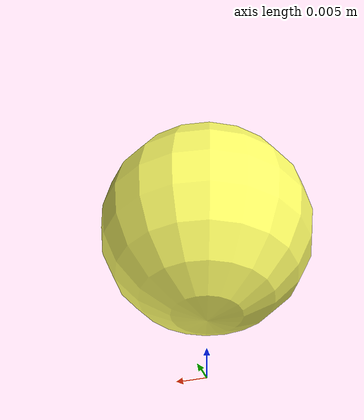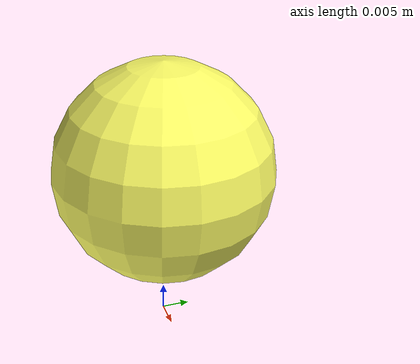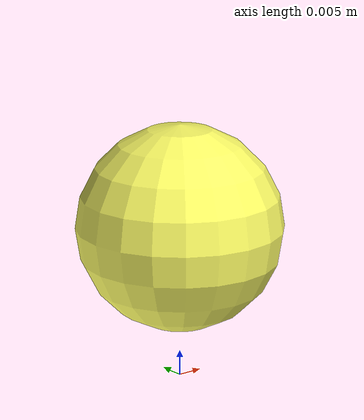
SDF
<?xml version='1.0'?>
<sdf version='1.4'>
  <model name="ball">
    <link name='chassis'>
      <pose>0 0 .03 0 0 0</pose>
      <collision name="collision">
        <geometry>
          <sphere>
            <radius>.02</radius>
          </sphere>
        </geometry>
      </collision>
      <visual name="visual">
        <geometry>
          <sphere>
            <radius>.02</radius>
          </sphere>
        </geometry>
        <material>
          <ambient>1 1 .4 1</ambient>
          <diffuse>1 1 .4 1</diffuse>
          <specular>0.1 0.1 0.1 1</specular>
          <emissive>0 0 0 0</emissive>
        </material>
      </visual>
    </link>
  </model>
</sdf>
